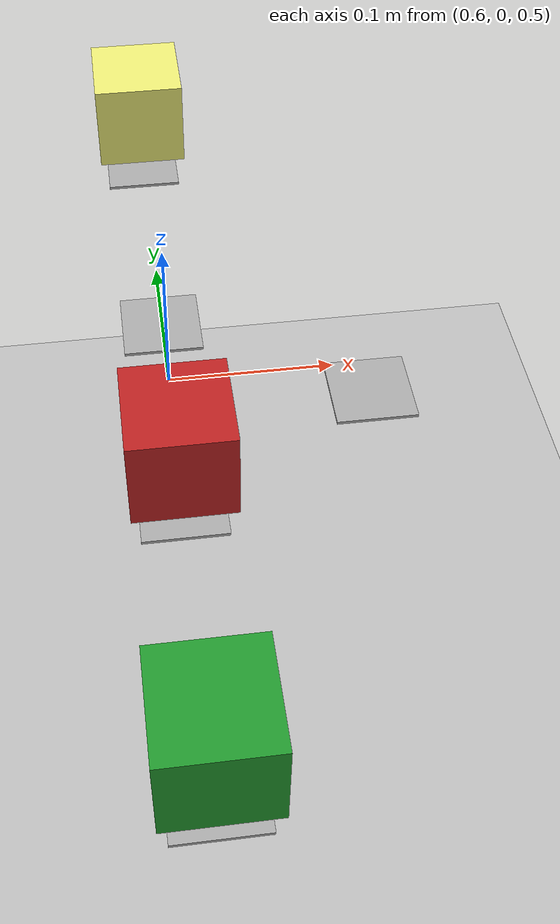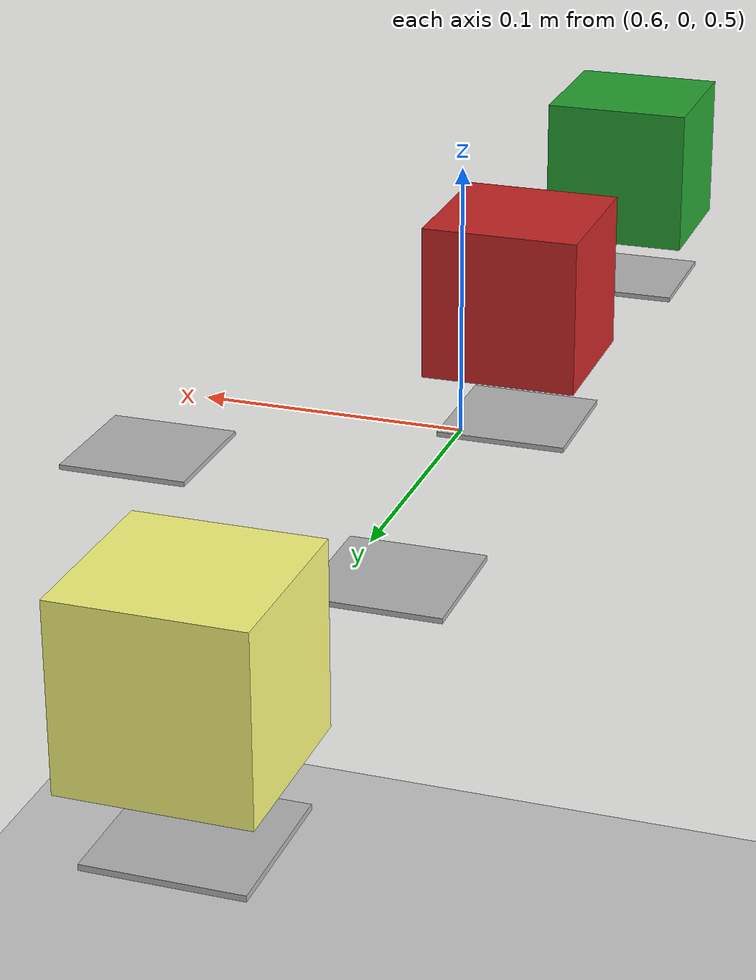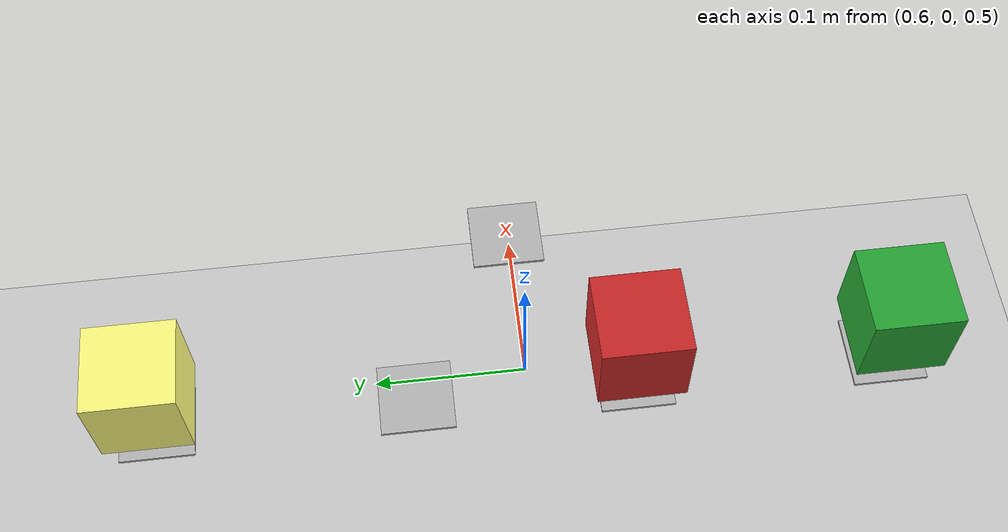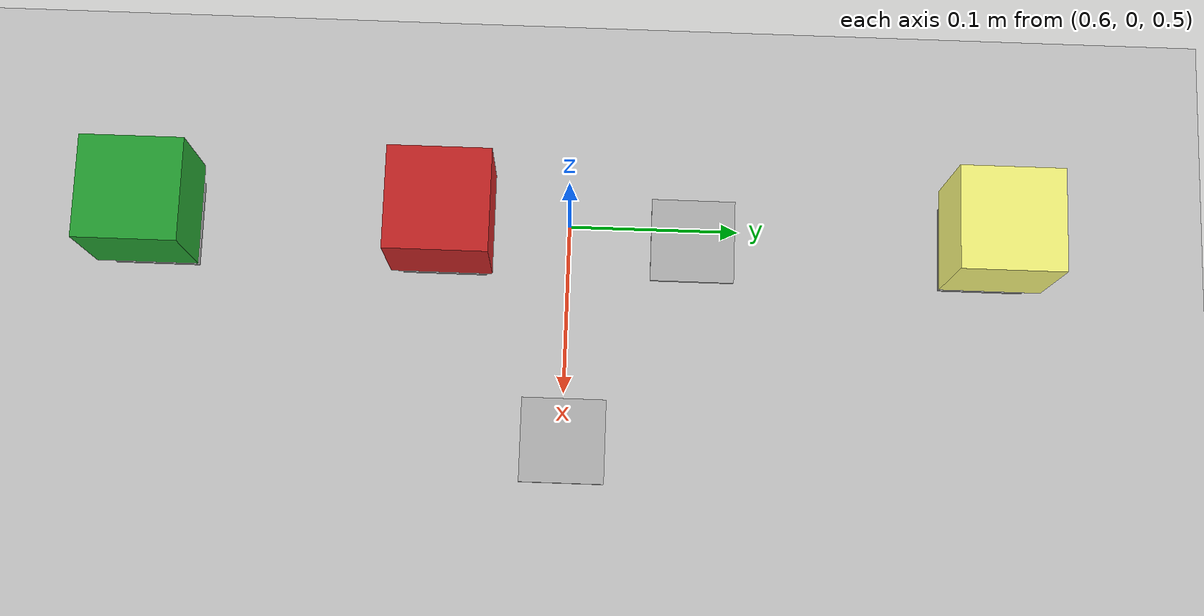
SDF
<sdf version="1.4">
 <world name="default">
  <include><uri>model://ground_plane</uri></include>
  <include><uri>model://sun</uri></include>
  <include><uri>model://ARMarker0</uri><name>Spot1Marker</name><pose>0.6 -0.075 0.475 0 0 0</pose></include>
  <include><uri>model://cubeR</uri><name>cube2</name><pose>0.6 -0.075 0.53 0 0 0</pose></include>
  <include><uri>model://ARMarker0</uri><name>Spot2Marker</name><pose>0.6 0.075 0.475 0 0 0</pose></include>
  <include><uri>model://cubeG</uri><name>cube3</name><pose>0.6 -0.25 0.53 0 0 0</pose></include>
  <include><uri>model://ARMarker0</uri><name>Spot3Marker</name><pose>0.6 -0.25 0.475 0 0 0</pose></include>
  <include><uri>model://cubeY</uri><name>cube4</name><pose>0.6 0.25 0.53 0 0 0</pose></include>
  <include><uri>model://ARMarker0</uri><name>Spot1Marker</name><pose>0.6 0.25 0.475 0 0 0</pose></include>
  <include>
   <uri>model://ARMarker1</uri>
   <name>IntermediateSpotMarker</name>
   <pose>0.725 0 0.475 0 0 0</pose>
  </include>
 </world>
</sdf>

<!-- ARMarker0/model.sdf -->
<sdf version='1.6'>
  <model name='ARMarker0'>
    <link name='link_2'>
      <visual name='visual'>
        <geometry>
          <mesh>
            <uri>model://ARMarker0/ArMarker0.dae</uri>

	  </mesh>
        </geometry>
      </visual>
      <collision name='collision'>
        <geometry>
          <mesh>
            <uri>model://ARMarker0/ArMarker0.dae</uri>
	  </mesh>
        </geometry>
      </collision>
    </link>
    <static>1</static>
  </model>
</sdf>

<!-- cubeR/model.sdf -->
<sdf version='1.6'>
  <model name='cubeR'>
    <link name='link_2'>
      <pose frame=''>0 0 0 0 -0 0</pose>
      <inertial>
        <mass>0.25</mass>
        <inertia>
          <ixx>0.001</ixx>
          <ixy>0</ixy>
          <ixz>0</ixz>
          <iyy>0.001</iyy>
          <iyz>0</iyz>
          <izz>0.001</izz>
        </inertia>
        <pose frame=''>0 0 0 0 -0 0</pose>
      </inertial>
      <gravity>1</gravity>
      <self_collide>0</self_collide>
      <kinematic>0</kinematic>
      <enable_wind>0</enable_wind>
      <visual name='visual'>
        <pose frame=''>0 0 0 0 -0 0</pose>
        <geometry>
          <box>
            <size>0.06 0.06 0.06</size>
          </box>
        </geometry>
        <material>
          <lighting>1</lighting>
          <script>
            <uri>file://media/materials/scripts/gazebo.material</uri>
            <name>Gazebo/Red</name>
          </script>
          <ambient>1 0 0 1</ambient>
          <diffuse>1 0 0 1</diffuse>
          <specular>0 0 0 1</specular>
          <emissive>0 0 0 1</emissive>
          <shader type='vertex'>
            <normal_map>__default__</normal_map>
          </shader>
        </material>
        <cast_shadows>1</cast_shadows>
        <transparency>0</transparency>
      </visual>
      <collision name='collision'>
        <laser_retro>0</laser_retro>
        <max_contacts>10</max_contacts>
        <pose frame=''>0 0 0 0 -0 0</pose>
        <geometry>
          <box>
            <size>0.06 0.06 0.06</size>
          </box>
        </geometry>
        <surface>
          <friction>
            <ode>
              <mu>300000</mu>
              <mu2>300000</mu2>
              <fdir1>0 0 0</fdir1>
              <slip1>0</slip1>
              <slip2>0</slip2>
            </ode>
            <torsional>
              <coefficient>1</coefficient>
              <patch_radius>0</patch_radius>
              <surface_radius>0</surface_radius>
              <use_patch_radius>1</use_patch_radius>
              <ode>
                <slip>0</slip>
              </ode>
            </torsional>
          </friction>
          <bounce>
            <restitution_coefficient>0</restitution_coefficient>
            <threshold>1e+06</threshold>
          </bounce>
          <contact>
            <collide_without_contact>0</collide_without_contact>
            <collide_without_contact_bitmask>1</collide_without_contact_bitmask>
            <collide_bitmask>1</collide_bitmask>
            <ode>
              <soft_cfm>0</soft_cfm>
              <soft_erp>0.2</soft_erp>
              <kp>1e+13</kp>
              <kd>1</kd>
              <max_vel>0.01</max_vel>
              <min_depth>0.003</min_depth>
            </ode>
            <bullet>
              <split_impulse>1</split_impulse>
              <split_impulse_penetration_threshold>-0.01</split_impulse_penetration_threshold>
              <soft_cfm>0</soft_cfm>
              <soft_erp>0.2</soft_erp>
              <kp>1e+13</kp>
              <kd>1</kd>
            </bullet>
          </contact>
        </surface>
      </collision>
    </link>
    <static>0</static>
    <allow_auto_disable>1</allow_auto_disable>
  </model>
</sdf>

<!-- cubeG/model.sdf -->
<sdf version='1.6'>
  <model name='cubeG'>
    <link name='link_2'>
      <pose frame=''>0 0 0 0 -0 0</pose>
      <inertial>
        <mass>0.25</mass>
        <inertia>
          <ixx>0.001</ixx>
          <ixy>0</ixy>
          <ixz>0</ixz>
          <iyy>0.001</iyy>
          <iyz>0</iyz>
          <izz>0.001</izz>
        </inertia>
        <pose frame=''>0 0 0 0 -0 0</pose>
      </inertial>
      <gravity>1</gravity>
      <self_collide>0</self_collide>
      <kinematic>0</kinematic>
      <enable_wind>0</enable_wind>
      <visual name='visual'>
        <pose frame=''>0 0 0 0 -0 0</pose>
        <geometry>
          <box>
            <size>0.06 0.06 0.06</size>
          </box>
        </geometry>
        <material>
          <lighting>1</lighting>
          <script>
            <uri>file://media/materials/scripts/gazebo.material</uri>
            <name>Gazebo/Green</name>
          </script>
          <ambient>0 1 0 1</ambient>
          <diffuse>0 1 0 1</diffuse>
          <specular>0 0 0 1</specular>
          <emissive>0 0 0 1</emissive>
          <shader type='vertex'>
            <normal_map>__default__</normal_map>
          </shader>
        </material>
        <cast_shadows>1</cast_shadows>
        <transparency>0</transparency>
      </visual>
      <collision name='collision'>
        <laser_retro>0</laser_retro>
        <max_contacts>10</max_contacts>
        <pose frame=''>0 0 0 0 -0 0</pose>
        <geometry>
          <box>
            <size>0.06 0.06 0.06</size>
          </box>
        </geometry>
        <surface>
          <friction>
            <ode>
              <mu>300000.0</mu>
              <mu2>300000.0</mu2>
              <fdir1>0 0 0</fdir1>
              <slip1>0</slip1>
              <slip2>0</slip2>
            </ode>
            <torsional>
              <coefficient>1</coefficient>
              <patch_radius>0</patch_radius>
              <surface_radius>0</surface_radius>
              <use_patch_radius>1</use_patch_radius>
              <ode>
                <slip>0</slip>
              </ode>
            </torsional>
          </friction>
          <bounce>
            <restitution_coefficient>0</restitution_coefficient>
            <threshold>1e+06</threshold>
          </bounce>
          <contact>
            <collide_without_contact>0</collide_without_contact>
            <collide_without_contact_bitmask>1</collide_without_contact_bitmask>
            <collide_bitmask>1</collide_bitmask>
            <ode>
              <soft_cfm>0</soft_cfm>
              <soft_erp>0.2</soft_erp>
              <kp>1e+13</kp>
              <kd>1</kd>
              <max_vel>0.01</max_vel>
              <min_depth>0.003</min_depth>
            </ode>
            <bullet>
              <split_impulse>1</split_impulse>
              <split_impulse_penetration_threshold>-0.01</split_impulse_penetration_threshold>
              <soft_cfm>0</soft_cfm>
              <soft_erp>0.2</soft_erp>
              <kp>1e+13</kp>
              <kd>1</kd>
            </bullet>
          </contact>
        </surface>
      </collision>
    </link>
    <static>0</static>
    <allow_auto_disable>1</allow_auto_disable>
  </model>
</sdf>

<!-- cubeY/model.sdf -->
<sdf version='1.6'>
  <model name='cubeY'>
    <link name='link_2'>
      <pose frame=''>0 0 0 0 -0 0</pose>
      <inertial>
        <mass>0.25</mass>
        <inertia>
          <ixx>0.001</ixx>
          <ixy>0</ixy>
          <ixz>0</ixz>
          <iyy>0.001</iyy>
          <iyz>0</iyz>
          <izz>0.001</izz>
        </inertia>
        <pose frame=''>0 0 0 0 -0 0</pose>
      </inertial>
      <gravity>1</gravity>
      <self_collide>0</self_collide>
      <kinematic>0</kinematic>
      <enable_wind>0</enable_wind>
      <visual name='visual'>
        <pose frame=''>0 0 0 0 -0 0</pose>
        <geometry>
          <box>
            <size>0.06 0.06 0.06</size>
          </box>
        </geometry>
        <material>
          <lighting>1</lighting>
          <script>
            <uri>file://media/materials/scripts/gazebo.material</uri>
            <name>Gazebo/Grey</name>
          </script>
          <ambient>1 1 0.5 1</ambient>
          <diffuse>1 1 0.5 1</diffuse>
          <specular>0 0 0 1</specular>
          <emissive>0 0 0 1</emissive>
          <shader type='vertex'>
            <normal_map>__default__</normal_map>
          </shader>
        </material>
        <cast_shadows>1</cast_shadows>
        <transparency>0</transparency>
      </visual>
      <collision name='collision'>
        <laser_retro>0</laser_retro>
        <max_contacts>10</max_contacts>
        <pose frame=''>0 0 0 0 -0 0</pose>
        <geometry>
          <box>
            <size>0.06 0.06 0.06</size>
          </box>
        </geometry>
        <surface>
          <friction>
            <ode>
              <mu>300000</mu>
              <mu2>300000</mu2>
              <fdir1>0 0 0</fdir1>
              <slip1>0</slip1>
              <slip2>0</slip2>
            </ode>
            <torsional>
              <coefficient>1</coefficient>
              <patch_radius>0</patch_radius>
              <surface_radius>0</surface_radius>
              <use_patch_radius>1</use_patch_radius>
              <ode>
                <slip>0</slip>
              </ode>
            </torsional>
          </friction>
          <bounce>
            <restitution_coefficient>0</restitution_coefficient>
            <threshold>1e+06</threshold>
          </bounce>
          <contact>
            <collide_without_contact>0</collide_without_contact>
            <collide_without_contact_bitmask>1</collide_without_contact_bitmask>
            <collide_bitmask>1</collide_bitmask>
            <ode>
              <soft_cfm>0</soft_cfm>
              <soft_erp>0.2</soft_erp>
              <kp>1e+13</kp>
              <kd>1</kd>
              <max_vel>0.01</max_vel>
              <min_depth>0.003</min_depth>
            </ode>
            <bullet>
              <split_impulse>1</split_impulse>
              <split_impulse_penetration_threshold>-0.01</split_impulse_penetration_threshold>
              <soft_cfm>0</soft_cfm>
              <soft_erp>0.2</soft_erp>
              <kp>1e+13</kp>
              <kd>1</kd>
            </bullet>
          </contact>
        </surface>
      </collision>
    </link>
    <static>0</static>
    <allow_auto_disable>1</allow_auto_disable>
  </model>
</sdf>

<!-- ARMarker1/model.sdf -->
<sdf version='1.6'>
  <model name='ARMarker1'>
    <link name='link_2'>
      <visual name='visual'>
        <geometry>
          <mesh>
            <uri>model://ARMarker1/ArMarker1.dae</uri>

	  </mesh>
        </geometry>
      </visual>
      <collision name='collision'>
        <geometry>
          <mesh>
            <uri>model://ARMarker1/ArMarker1.dae</uri>
	  </mesh>
        </geometry>
      </collision>
    </link>
    <static>1</static>
  </model>
</sdf>
